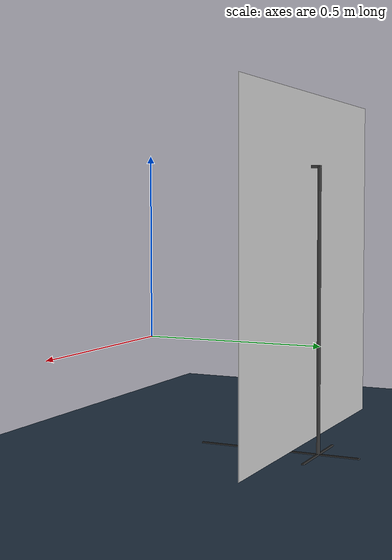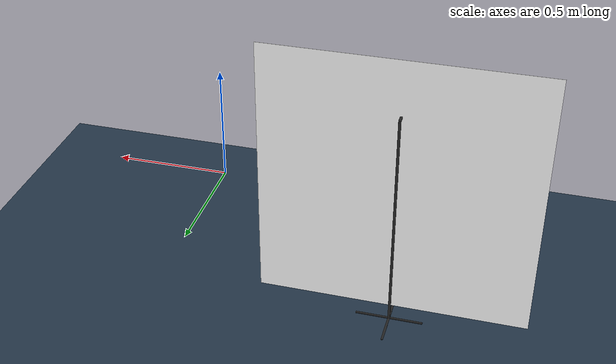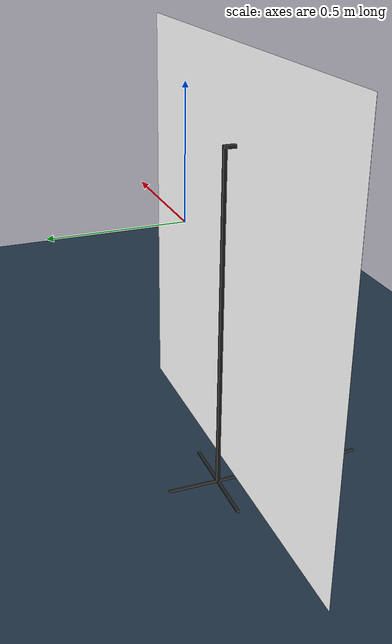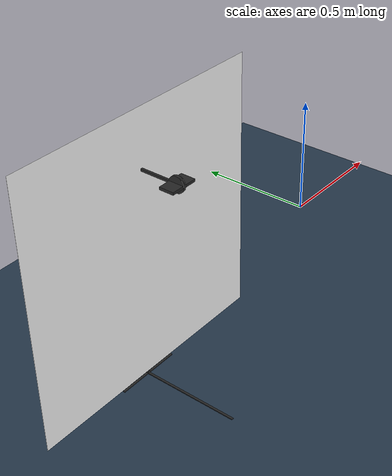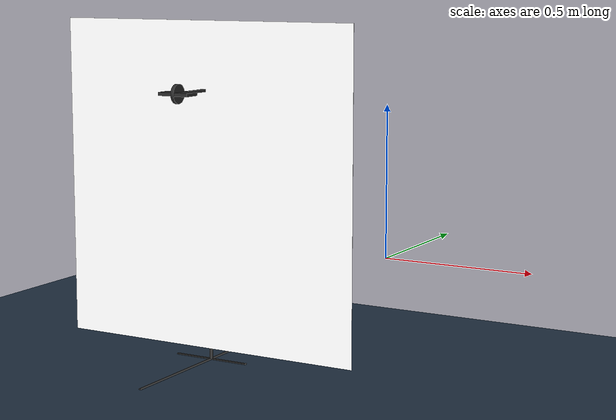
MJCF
<mujoco model="base">
  <statistic extent="2" meansize=".05" />
  <compiler angle="radian" coordinate="local" eulerseq="XYZ" autolimits="true" />
  <option impratio="1" timestep="0.0015" solver="Newton" iterations="30" tolerance="1e-10" jacobian="sparse" cone="elliptic" integrator="RK4"/>
  <size nconmax="5000" njmax="5000" />

  <extension></extension>

  <asset>
    <texture type="skybox" builtin="gradient" rgb1="1. 1. 0.9" rgb2="0.9 0.9 0.81" width="512" height="512"/>
    <texture name="texplane" type="2d" builtin="checker" rgb1=".2 .3 .4" rgb2=".1 0.15 0.2" width="512" height="512" mark="cross" markrgb=".8 .8 .8"/>
    <material name="matplane" reflectance="0.3" texture="texplane" texrepeat="1 1" texuniform="true"/>
  </asset>

  <visual>
    <rgba haze="0.15 0.25 0.35 1"/>
    <quality shadowsize="2048"/>
    <map znear="0.001" stiffness="700" shadowscale="0.5" fogstart="10" fogend="15" zfar="40" haze="0.3"/>
  </visual>

  <actuator></actuator>

  <worldbody>
    <!-- Floor -->
    <camera mode="fixed" pos="0 -1 1.5" quat="0.866 0.5 0 0"/>
    <camera mode="fixed" pos="1. -1.2 0.8" quat="0.687 0.527 0.304 0.397"/>
    <camera mode="fixed" pos="-1.8 -1.1 .7" quat="0.73296292  0.56242221 -0.23296292 -0.30360319"/>
    <camera mode="fixed" pos="-1 -1.5 .5" quat="0.707 0.707 0 0"/>
    <camera mode="fixed" pos="9.7 -1.0 1.1" quat="0.687 0.527 0.304 0.397"/>
    <camera mode="fixed" pos="4.5 -8.0 .5" quat="0.707 0.707 0 0"/>
    <geom condim="1" material="matplane" name="floor" pos="0 0 -0.5" contype="0" conaffinity="0" size="3 3 .125" type="plane"/>
    <light directional="true" diffuse=".4 .4 .4" specular="0.1 0.1 0.1" pos="0 0 5.0" dir="0 0 -1" castshadow="false"/>
    <light directional="true" diffuse=".6 .6 .6" specular="0.2 0.2 0.2" pos="0 0 4" dir="0 0 -1"/>
    <geom contype="0" conaffinity="0" rgba="1 1 1 1" name="whiteback" pos="-0.81 0.17 0.15" quat="0.707 0.707 0 0" size="0.6 0.6 0.125" type="plane"/>
    <body name="holder" pos="-0.81 0 0.5">
      <site name="holder_main" type="box" size="0.06 0.032 0.006" rgba="0.15 0.15 0.15 1"/>
      <site name="holder_cyl" type="cylinder" quat="0.707 0.0 0.707 0.0" size="0.035 0.006" rgba="0.15 0.15 0.15 1"/>
      <body name="stand" pos="0 0.2 0">
        <site name="holder_standextend" pos="0 -0.095 0" type="box" size="0.005 0.1 0.005" rgba="0.15 0.15 0.15 1"/>
        <site name="holder_standmain" pos="0 0 -0.5" type="box" size="0.005 0.005 0.5" rgba="0.15 0.15 0.15 1"/>
        <site name="holder_geom1" pos="0 0 -0.998" type="box" size="0.15 0.005 0.002" rgba="0.15 0.15 0.15 1"/>
        <site name="holder_geom2" pos="0 -0.15 -0.998" type="box" size="0.005 0.30 0.002" rgba="0.15 0.15 0.15 1"/>
      </body>
    </body>

    <!-- Change the joint edits in env when removing or adding new bodies -->
    <!-- Mainly for 2D case when joint editing is required -->
  </worldbody>

  <sensor></sensor>

  <equality></equality>

  <contact></contact>

</mujoco>
